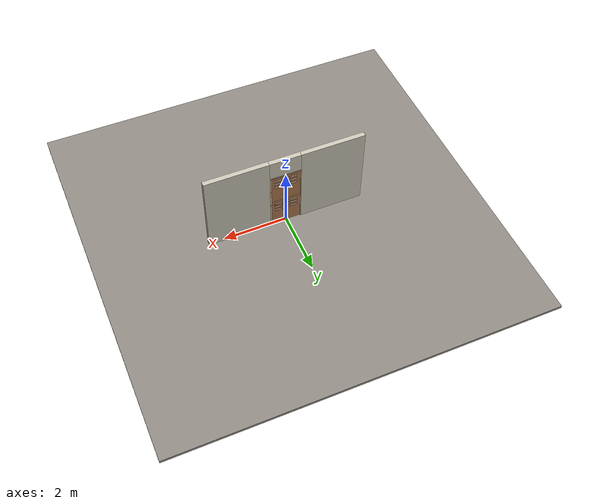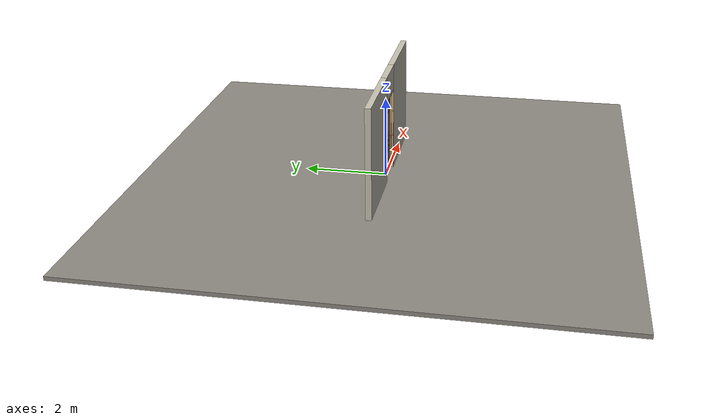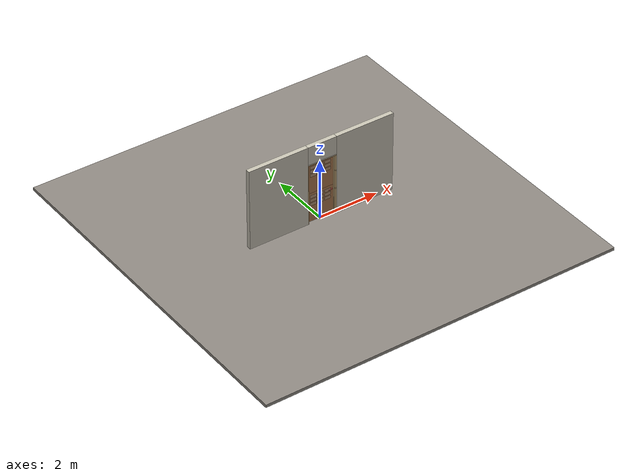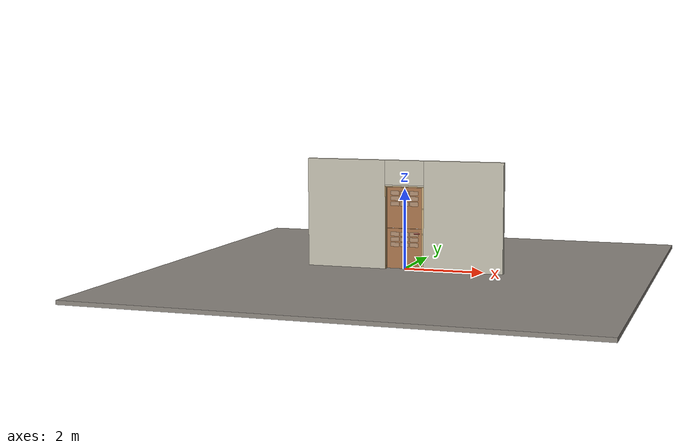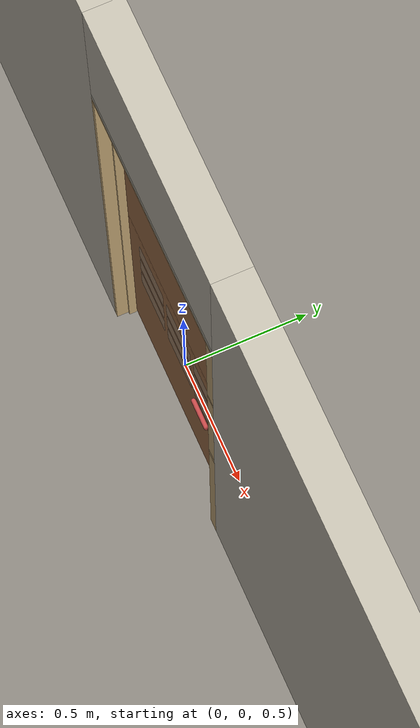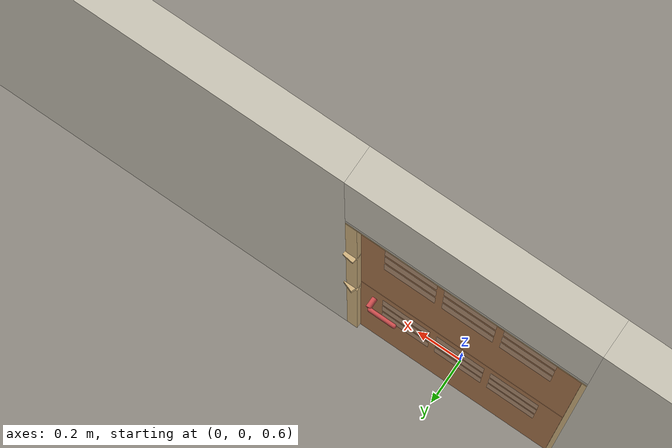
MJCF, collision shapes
<?xml version="1.0" ?>
<mujoco model="db0333_dutch_minimal">
  <compiler angle="radian" meshdir="../../hardware" texturedir="../../textures" autolimits="true" inertiafromgeom="false"/>
  <option timestep="0.002" integrator="implicitfast" cone="elliptic" impratio="10" noslip_iterations="3">
    <flag multiccd="enable"/>
  </option>
  <size memory="16M"/>
  <default>
    <geom condim="4" solref="0.005 1" solimp="0.95 0.99 0.001"/>
    <joint solreflimit="0.005 1" solimplimit="0.95 0.99 0.001"/>
    <tendon solreflimit="0.005 1"/>
    <equality solref="0.002 1"/>
  </default>
  <visual>
    <headlight ambient="0.4 0.4 0.4" diffuse="0.7 0.7 0.7" specular="0.2 0.2 0.2"/>
    <quality shadowsize="4096"/>
    <map znear="0.01" zfar="60"/>
  </visual>
  <asset>
    <mesh name="lever_f913fc5b7b" file="lever_f913fc5b7b.obj"/>
    <material name="mat_floor" rgba="0.55 0.53 0.5 1" specular="0.2" shininess="0.15" reflectance="0"/>
    <material name="mat_wall" rgba="0.78 0.76 0.7 1" specular="0.2" shininess="0.1" reflectance="0"/>
    <material name="mat_leaf_lower" rgba="0.663 0.462 0.302 1" specular="0.2" shininess="0.45" reflectance="0"/>
    <material name="mat_glass" rgba="0.85 0.92 0.95 0.25" specular="0.2" shininess="0.95" reflectance="0.1"/>
    <material name="mat_leaf_upper" rgba="0.663 0.462 0.302 1" specular="0.2" shininess="0.45" reflectance="0"/>
    <material name="mat_op_stainless" rgba="0.75 0.76 0.77 1" specular="0.8" shininess="0.65" reflectance="0.4"/>
    <material name="mat_trim" rgba="0.85 0.66 0.3 1" specular="0.8" shininess="0.75" reflectance="0.4"/>
    <material name="mat_bolt" rgba="0.85 0.66 0.3 1" specular="0.8" shininess="0.75" reflectance="0.4"/>
    <material name="mat_joinbolt" rgba="0.85 0.66 0.3 1" specular="0.8" shininess="0.75" reflectance="0.4"/>
    <material name="mat_frame" rgba="0.82 0.7 0.5 1" specular="0.2" shininess="0.45" reflectance="0"/>
    <material name="mat_seal" rgba="0.1 0.1 0.1 1" specular="0.2" shininess="0.1" reflectance="0"/>
    <material name="mat_hinge" rgba="0.65 0.66 0.68 1" specular="0.74" shininess="0.5" reflectance="0.36"/>
    <texture name="skybox" type="skybox" builtin="gradient" rgb1="0.6 0.7 0.85" rgb2="0.9 0.92 0.95" width="256" height="256"/>
  </asset>
  <worldbody>
    <light name="sun" pos="1.5 -2.5 4" dir="-0.3 0.5 -0.8" directional="true" diffuse="0.8 0.8 0.8" specular="0.3 0.3 0.3" castshadow="true"/>
    <light name="fill" pos="-1.5 2.5 3" dir="0.3 -0.5 -0.7" directional="true" diffuse="0.35 0.35 0.4" castshadow="false"/>
    <camera name="robot_view" pos="0 -2.572687 1.734312" xyaxes="1 0 0 0 0.26963 0.962964" fovy="52"/>
    <camera name="far_view" pos="0 2.511687 1.734312" xyaxes="-1 0 0 0 -0.26963 0.962964" fovy="52"/>
    <camera name="iso" pos="1.932062 -2.165938 2.141063" xyaxes="0.741536 0.670913 0 -0.242917 0.268487 0.932151" fovy="46"/>
    <camera name="detail_handle" pos="0.4625 -0.877 1.176" xyaxes="0.97561 0.219512 0 -0.070934 0.315262 0.94635" fovy="38"/>
    <geom name="floor" type="box" size="6 6 0.05" pos="0 0 -0.05" material="mat_floor" group="0" contype="1" conaffinity="1" friction="0.8 0.005 0.0001" density="2400"/>
    <geom name="wall_left" type="box" size="1.01025 0.0725 1.35" pos="-1.48975 -0.0305 1.35" material="mat_wall" group="0" contype="1" conaffinity="1" friction="0.6 0.005 0.0001" density="800"/>
    <geom name="wall_right" type="box" size="0.99525 0.0725 1.35" pos="1.50475 -0.0305 1.35" material="mat_wall" group="0" contype="1" conaffinity="1" friction="0.6 0.005 0.0001" density="800"/>
    <geom name="wall_header" type="box" size="0.4945 0.0725 0.303" pos="0.015 -0.0305 2.397" material="mat_wall" group="0" contype="1" conaffinity="1" friction="0.6 0.005 0.0001" density="800"/>
    <geom name="jamb_hinge" type="box" size="0.0095 0.0725 1.0225" pos="-0.47 -0.0305 1.0225" material="mat_frame" group="0" contype="1" conaffinity="1" friction="0.6 0.005 0.0001" density="400"/>
    <geom name="strike_896_wall_n" type="box" size="0.0245 0.047575 0.0167" pos="0.485 -0.055425 0.896" material="mat_frame" group="0" contype="1" conaffinity="1" friction="0.6 0.005 0.0001" density="400"/>
    <geom name="strike_896_wall_p" type="box" size="0.0245 0.008 0.0167" pos="0.485 0.01585 0.896" material="mat_frame" group="0" contype="1" conaffinity="1" friction="0.6 0.005 0.0001" density="400"/>
    <geom name="strike_896_ramp" type="box" size="0.0245 0.020268 0.0167" pos="0.490408 0.034645 0.896" quat="0.985179 0 0 -0.171531" material="mat_frame" group="0" contype="1" conaffinity="1" friction="0.12 0.005 0.0001" density="400"/>
    <geom name="strike_896_back" type="box" size="0.01615 0.00785 0.0167" pos="0.49335 0 0.896" material="mat_frame" group="0" contype="1" conaffinity="1" friction="0.6 0.005 0.0001" density="400"/>
    <geom name="strike_1524_wall_n" type="box" size="0.0245 0.04775 0.01" pos="0.485 -0.05525 1.524" material="mat_frame" group="0" contype="1" conaffinity="1" friction="0.6 0.005 0.0001" density="400"/>
    <geom name="strike_1524_wall_p" type="box" size="0.0245 0.008 0.01" pos="0.485 0.0155 1.524" material="mat_frame" group="0" contype="1" conaffinity="1" friction="0.6 0.005 0.0001" density="400"/>
    <geom name="strike_1524_ramp" type="box" size="0.0245 0.019412 0.01" pos="0.487296 0.039595 1.524" quat="0.997916 0 0 -0.064529" material="mat_frame" group="0" contype="1" conaffinity="1" friction="0.12 0.005 0.0001" density="400"/>
    <geom name="strike_1524_ramp_n" type="box" size="0.0245 0.019412 0.01" pos="0.487296 -0.027595 1.524" quat="0.997916 0 0 0.064529" material="mat_frame" group="0" contype="1" conaffinity="1" friction="0.12 0.005 0.0001" density="400"/>
    <geom name="strike_1524_back" type="box" size="0.0205 0.0075 0.01" pos="0.489 0 1.524" material="mat_frame" group="0" contype="1" conaffinity="1" friction="0.6 0.005 0.0001" density="400"/>
    <geom name="jamb_strike_0" type="box" size="0.0245 0.0725 0.43965" pos="0.485 -0.0305 0.43965" material="mat_frame" group="0" contype="1" conaffinity="1" friction="0.6 0.005 0.0001" density="400"/>
    <geom name="jamb_strike_1" type="box" size="0.0245 0.0725 0.30065" pos="0.485 -0.0305 1.21335" material="mat_frame" group="0" contype="1" conaffinity="1" friction="0.6 0.005 0.0001" density="400"/>
    <geom name="jamb_strike_2" type="box" size="0.0245 0.0725 0.2555" pos="0.485 -0.0305 1.7895" material="mat_frame" group="0" contype="1" conaffinity="1" friction="0.6 0.005 0.0001" density="400"/>
    <geom name="jamb_head" type="box" size="0.4945 0.0725 0.0095" pos="0.015 -0.0305 2.0545" material="mat_frame" group="0" contype="1" conaffinity="1" friction="0.6 0.005 0.0001" density="400"/>
    <geom name="head_stud" type="box" size="0.4945 0.0725 0.015" pos="0.015 -0.0305 2.079" material="mat_wall" group="0" contype="1" conaffinity="1" friction="0.6 0.005 0.0001" density="500"/>
    <geom name="stop_hinge" type="box" size="0.0055 0.016 1.0225" pos="-0.455 -0.0385 1.0225" material="mat_frame" group="0" contype="1" conaffinity="1" friction="0.6 0.005 0.0001" density="400"/>
    <geom name="stop_strike" type="box" size="0.0055 0.016 1.0225" pos="0.455 -0.0385 1.0225" material="mat_frame" group="0" contype="1" conaffinity="1" friction="0.6 0.005 0.0001" density="400"/>
    <geom name="stop_head" type="box" size="0.4605 0.016 0.0055" pos="0 -0.0385 2.0395" material="mat_frame" group="0" contype="1" conaffinity="1" friction="0.6 0.005 0.0001" density="400"/>
    <site name="approach_point" pos="0 -1.5 0" quat="1 0 0 0" size="0.05" rgba="0.2 0.9 0.2 0.5" group="4"/>
    <site name="goal_point" pos="0 1.5 0" quat="1 0 0 0" size="0.05" rgba="0.2 0.9 0.2 0.5" group="4"/>
    <site name="door_plane_center" pos="0 0 1.0225" quat="1 0 0 0" size="0.02" rgba="0.2 0.9 0.2 0.5" group="4"/>
    <body name="leaf_lower" pos="-0.4605 0 0">
      <inertial pos="0.46 0 0.553907" mass="19.492221" quat="-0.5 -0.5 -0.5 0.5" diaginertia="1.271170266 1.524517178 2.789312162"/>
      <joint name="leaf_lower_hinge" type="hinge" axis="0 0 1" pos="0.003 0.029 0" limited="true" range="0 1.570796" solreflimit="0.02 1" damping="0.30611" frictionloss="0.870299" armature="0.02"/>
      <geom name="leaf_lower_slab" type="box" size="0.457 0.022 0.5" pos="0.46 0 0.512" material="mat_leaf_lower" group="0" contype="1" conaffinity="1" friction="0.35 0.005 0.0001" density="1"/>
      <geom name="leaf_lower_glass_0" type="box" size="0.10882 0.0228 0.050833" pos="0.21236 0 0.607833" material="mat_glass" group="1" contype="0" conaffinity="0" density="1"/>
      <geom name="leaf_lower_glass_1" type="box" size="0.10882 0.0228 0.050833" pos="0.46 0 0.607833" material="mat_glass" group="1" contype="0" conaffinity="0" density="1"/>
      <geom name="leaf_lower_glass_2" type="box" size="0.10882 0.0228 0.050833" pos="0.70764 0 0.607833" material="mat_glass" group="1" contype="0" conaffinity="0" density="1"/>
      <geom name="leaf_lower_glass_3" type="box" size="0.10882 0.0228 0.050833" pos="0.21236 0 0.7395" material="mat_glass" group="1" contype="0" conaffinity="0" density="1"/>
      <geom name="leaf_lower_glass_4" type="box" size="0.10882 0.0228 0.050833" pos="0.46 0 0.7395" material="mat_glass" group="1" contype="0" conaffinity="0" density="1"/>
      <geom name="leaf_lower_glass_5" type="box" size="0.10882 0.0228 0.050833" pos="0.70764 0 0.7395" material="mat_glass" group="1" contype="0" conaffinity="0" density="1"/>
      <geom name="leaf_lower_glass_6" type="box" size="0.10882 0.0228 0.050833" pos="0.21236 0 0.871167" material="mat_glass" group="1" contype="0" conaffinity="0" density="1"/>
      <geom name="leaf_lower_glass_7" type="box" size="0.10882 0.0228 0.050833" pos="0.46 0 0.871167" material="mat_glass" group="1" contype="0" conaffinity="0" density="1"/>
      <geom name="leaf_lower_glass_8" type="box" size="0.10882 0.0228 0.050833" pos="0.70764 0 0.871167" material="mat_glass" group="1" contype="0" conaffinity="0" density="1"/>
      <body name="lower_handle" pos="0.847 0 0.896">
        <inertial pos="-0.0423 0 0" mass="0.712286" quat="0.707107 0 0 -0.707107" diaginertia="0.001444644 0.003449344 0.004855619"/>
        <joint name="lower_handle_hinge" type="hinge" axis="0 -1 0" limited="true" range="0 0.65" damping="0.225568" frictionloss="0.051863" stiffness="1" springref="-0.503022" armature="0.01"/>
        <geom name="lower_handle_lever_n" type="mesh" mesh="lever_f913fc5b7b" pos="0 -0.022 0" quat="0.707107 0.707107 0 0" material="mat_op_stainless" group="1" contype="0" conaffinity="0" density="3000"/>
        <geom name="lower_handle_lever_col_n" type="capsule" size="0.0095 0.0555" pos="-0.065 -0.077 0" quat="0.707107 0 -0.707107 0" material="mat_op_stainless" group="3" contype="1" conaffinity="1" rgba="0.8 0.3 0.3 0.25" friction="0.7 0.01 0.0001" density="3000"/>
        <geom name="lower_handle_hub_col_n" type="cylinder" size="0.012 0.022" pos="0 -0.052 0" quat="0.707107 -0.707107 0 0" material="mat_op_stainless" group="3" contype="1" conaffinity="1" rgba="0.8 0.3 0.3 0.25" friction="0.6 0.005 0.0001" density="3000"/>
        <geom name="lower_handle_lever_p" type="mesh" mesh="lever_f913fc5b7b" pos="0 0.022 0" quat="-0.707107 0.707107 0 0" material="mat_op_stainless" group="1" contype="0" conaffinity="0" density="3000"/>
        <geom name="lower_handle_lever_col_p" type="capsule" size="0.0095 0.0555" pos="-0.065 0.077 0" quat="0.707107 0 -0.707107 0" material="mat_op_stainless" group="3" contype="1" conaffinity="1" rgba="0.8 0.3 0.3 0.25" friction="0.7 0.01 0.0001" density="3000"/>
        <geom name="lower_handle_hub_col_p" type="cylinder" size="0.012 0.022" pos="0 0.052 0" quat="0.707107 -0.707107 0 0" material="mat_op_stainless" group="3" contype="1" conaffinity="1" rgba="0.8 0.3 0.3 0.25" friction="0.6 0.005 0.0001" density="3000"/>
        <site name="lower_handle_grip_n" pos="-0.104 -0.077 0" quat="1 0 0 0" size="0.012" rgba="0.2 0.9 0.2 0.5" group="4"/>
        <site name="lower_handle_grip_p" pos="-0.104 0.077 0" quat="1 0 0 0" size="0.012" rgba="0.2 0.9 0.2 0.5" group="4"/>
      </body>
      <body name="lower_latch_bolt" pos="0.917 0 0.896">
        <inertial pos="-0.00865 0 0" mass="0.041419" quat="0.92388 -0.382683 0 0" diaginertia="0.000000798 0.000005598 0.000005598"/>
        <joint name="lower_latch_bolt_slide" type="slide" axis="-1 0 0" limited="true" range="0 0.0127" damping="2" frictionloss="0.3" stiffness="300" springref="-0.008333" armature="0.1"/>
        <geom name="lower_latch_bolt_capsule" type="capsule" size="0.00635 0.015" pos="-0.00865 0 0" quat="0.707107 0 0.707107 0" material="mat_bolt" group="0" contype="1" conaffinity="1" friction="0.2 0.005 0.0001" density="8500"/>
      </body>
    </body>
    <body name="leaf_upper" pos="-0.4605 0 0">
      <inertial pos="0.46 0 1.568722" mass="19.735411" quat="0.5 0.5 0.5 -0.5" diaginertia="1.28647347 1.580539765 2.860557877"/>
      <joint name="leaf_upper_hinge" type="hinge" axis="0 0 1" pos="0.003 0.029 0" limited="true" range="0 1.570796" solreflimit="0.02 1" damping="0.30611" frictionloss="0.870299" armature="0.02"/>
      <geom name="leaf_upper_slab" type="box" size="0.457 0.022 0.506" pos="0.46 0 1.526" material="mat_leaf_upper" group="0" contype="1" conaffinity="1" friction="0.35 0.005 0.0001" density="1"/>
      <geom name="leaf_upper_glass_0" type="box" size="0.10882 0.0228 0.051833" pos="0.21236 0 1.622833" material="mat_glass" group="1" contype="0" conaffinity="0" density="1"/>
      <geom name="leaf_upper_glass_1" type="box" size="0.10882 0.0228 0.051833" pos="0.46 0 1.622833" material="mat_glass" group="1" contype="0" conaffinity="0" density="1"/>
      <geom name="leaf_upper_glass_2" type="box" size="0.10882 0.0228 0.051833" pos="0.70764 0 1.622833" material="mat_glass" group="1" contype="0" conaffinity="0" density="1"/>
      <geom name="leaf_upper_glass_3" type="box" size="0.10882 0.0228 0.051833" pos="0.21236 0 1.7565" material="mat_glass" group="1" contype="0" conaffinity="0" density="1"/>
      <geom name="leaf_upper_glass_4" type="box" size="0.10882 0.0228 0.051833" pos="0.46 0 1.7565" material="mat_glass" group="1" contype="0" conaffinity="0" density="1"/>
      <geom name="leaf_upper_glass_5" type="box" size="0.10882 0.0228 0.051833" pos="0.70764 0 1.7565" material="mat_glass" group="1" contype="0" conaffinity="0" density="1"/>
      <geom name="leaf_upper_glass_6" type="box" size="0.10882 0.0228 0.051833" pos="0.21236 0 1.890167" material="mat_glass" group="1" contype="0" conaffinity="0" density="1"/>
      <geom name="leaf_upper_glass_7" type="box" size="0.10882 0.0228 0.051833" pos="0.46 0 1.890167" material="mat_glass" group="1" contype="0" conaffinity="0" density="1"/>
      <geom name="leaf_upper_glass_8" type="box" size="0.10882 0.0228 0.051833" pos="0.70764 0 1.890167" material="mat_glass" group="1" contype="0" conaffinity="0" density="1"/>
    </body>
  </worldbody>
  <tendon>
    <fixed name="lower_latch_bolt_coupling" limited="true" range="0 10">
      <joint joint="lower_latch_bolt_slide" coef="1"/>
      <joint joint="lower_handle_hinge" coef="-0.02082"/>
    </fixed>
  </tendon>
  <sensor>
    <jointpos name="leaf_lower_hinge_pos" joint="leaf_lower_hinge"/>
    <jointvel name="leaf_lower_hinge_vel" joint="leaf_lower_hinge"/>
    <jointpos name="leaf_upper_hinge_pos" joint="leaf_upper_hinge"/>
    <jointvel name="leaf_upper_hinge_vel" joint="leaf_upper_hinge"/>
    <jointpos name="lower_handle_hinge_pos" joint="lower_handle_hinge"/>
    <jointvel name="lower_handle_hinge_vel" joint="lower_handle_hinge"/>
    <jointpos name="lower_latch_bolt_slide_pos" joint="lower_latch_bolt_slide"/>
    <jointvel name="lower_latch_bolt_slide_vel" joint="lower_latch_bolt_slide"/>
  </sensor>
</mujoco>
